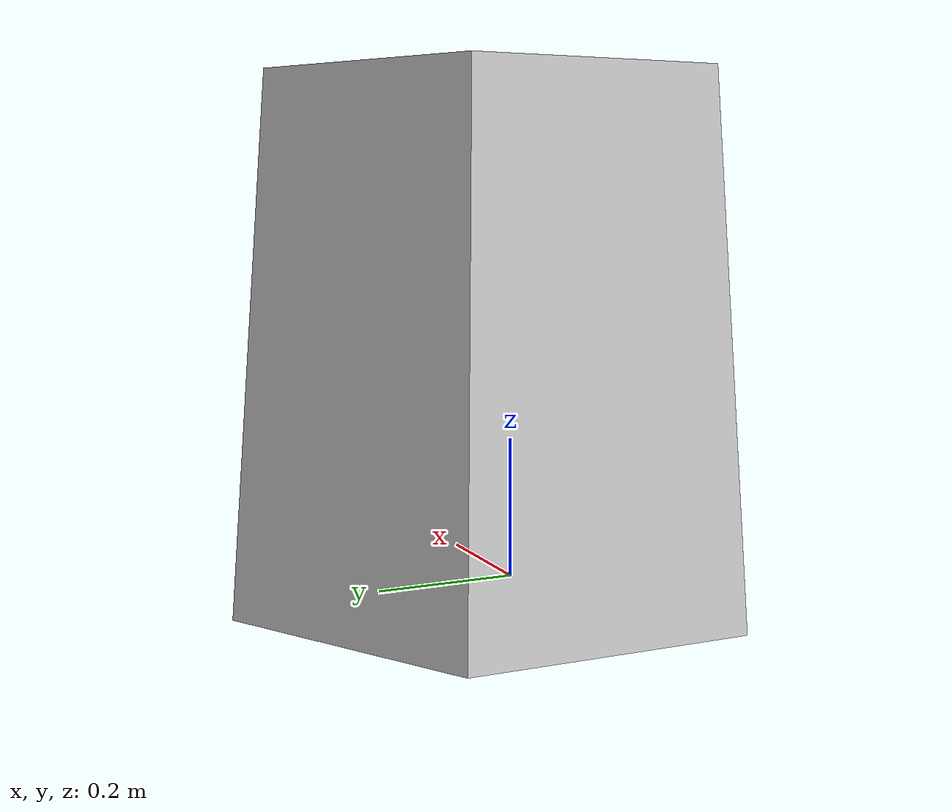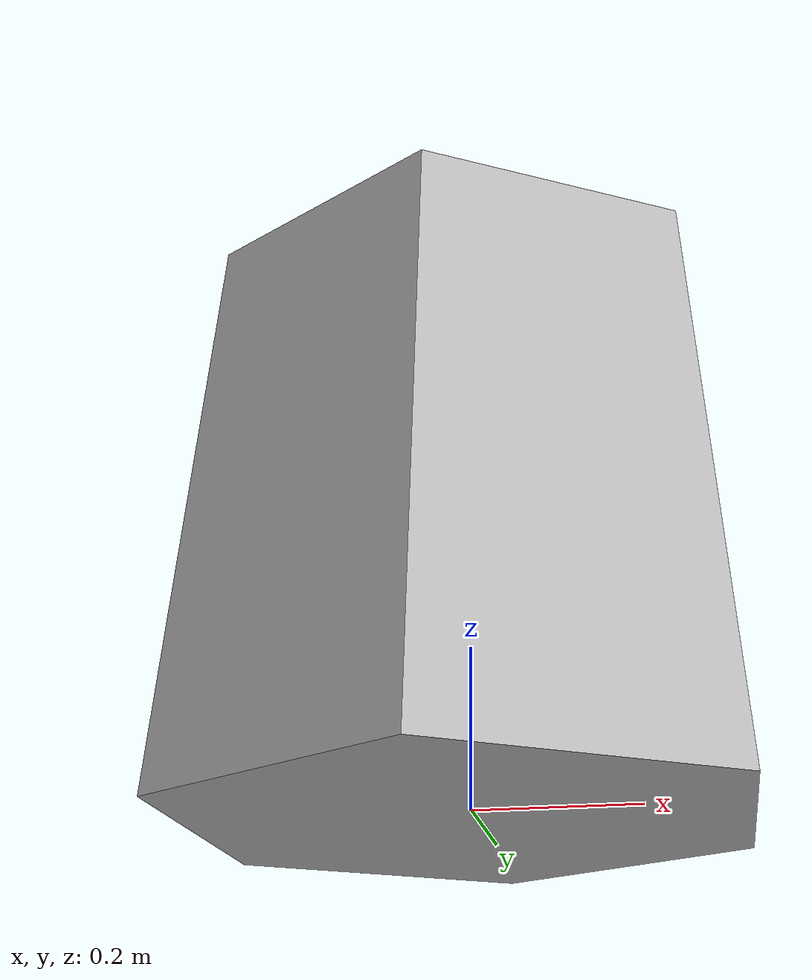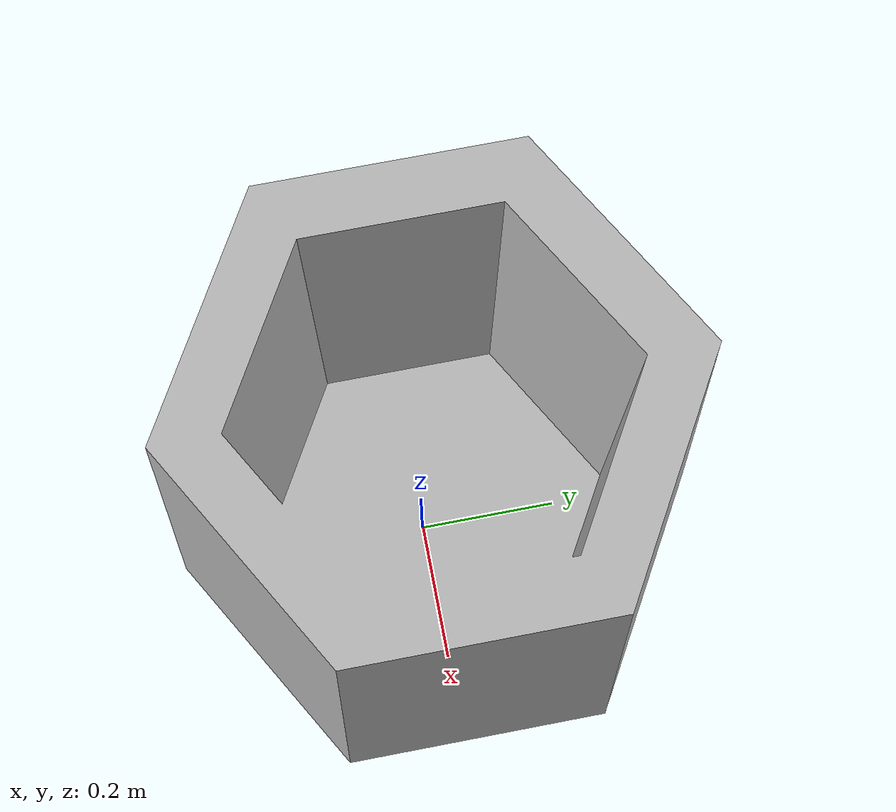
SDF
<?xml version='1.0'?>
<sdf version="1.4">
  <model name="park_trash">
    <static>true</static>
    <link name="link">
      <collision name="collision">
        <geometry>
          <mesh>
            <uri>model://park_trash/meshes/collision.dae</uri>
          </mesh>
        </geometry>
      </collision>
      <visual name="visual">
        <geometry>
          <mesh>
            <uri>model://park_trash/meshes/park_trash.dae</uri>
          </mesh>
        </geometry>
      </visual>
    </link>
  </model>
</sdf>
